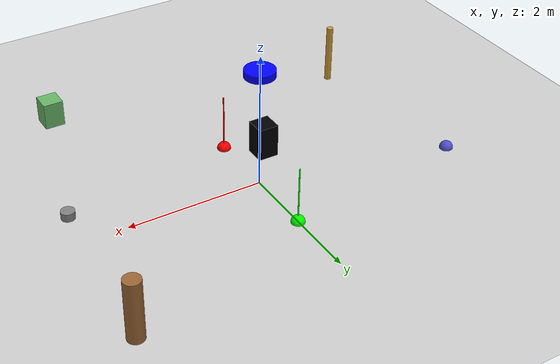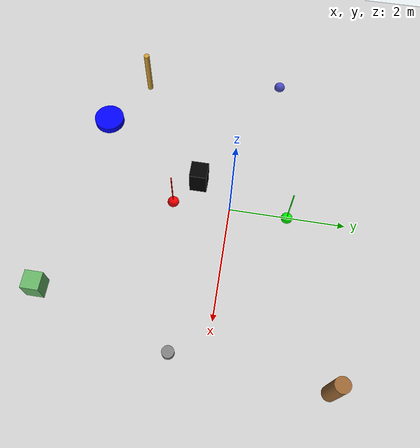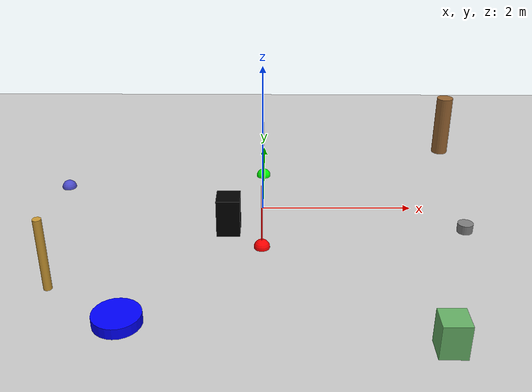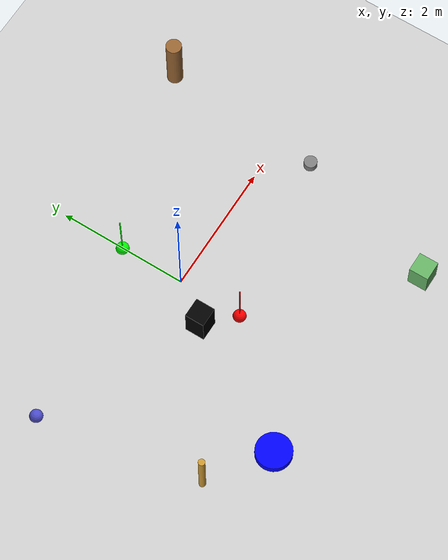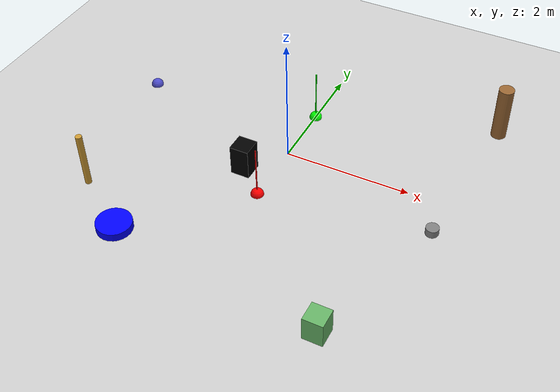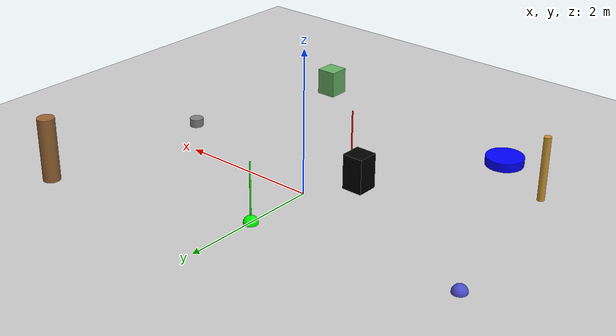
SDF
<?xml version="1.0"?>
<sdf version="1.6">
  <world name="figure8_world">
    <include>
      <uri>model://ground_plane</uri>
    </include>
    <include>
      <uri>model://sun</uri>
    </include>

    <!-- ==================== 真桩（与实车形状一致） ====================
         下半部：半径 10cm 半球（高 10cm），球心在地面 z=0
         上半部：半径 1cm 细杆，z 0.10~0.85 -->

    <!-- 下桩（绕逆时针） -->
    <model name="pile_down">
      <static>true</static>
      <pose>0 -1.0 0 0 0 0</pose>
      <!-- 下半球 -->
      <link name="base_link">
        <visual name="base_visual">
          <geometry>
            <sphere>
              <radius>0.10</radius>
            </sphere>
          </geometry>
          <material>
            <ambient>1 0 0 1</ambient>
            <diffuse>1 0 0 1</diffuse>
          </material>
        </visual>
        <collision name="base_collision">
          <geometry>
            <sphere>
              <radius>0.10</radius>
            </sphere>
          </geometry>
        </collision>
      </link>
      <!-- 上细杆 -->
      <link name="rod_link">
        <pose>0 0 0.475 0 0 0</pose>
        <visual name="rod_visual">
          <geometry>
            <cylinder>
              <radius>0.01</radius>
              <length>0.75</length>
            </cylinder>
          </geometry>
          <material>
            <ambient>1 0 0 1</ambient>
            <diffuse>1 0 0 1</diffuse>
          </material>
        </visual>
        <collision name="rod_collision">
          <geometry>
            <cylinder>
              <radius>0.01</radius>
              <length>0.75</length>
            </cylinder>
          </geometry>
        </collision>
      </link>
      <joint name="fix_rod" type="fixed">
        <parent>base_link</parent>
        <child>rod_link</child>
      </joint>
    </model>

    <!-- 上桩（绕顺时针） -->
    <model name="pile_up">
      <static>true</static>
      <pose>0 1.0 0 0 0 0</pose>
      <link name="base_link">
        <visual name="base_visual">
          <geometry>
            <sphere>
              <radius>0.10</radius>
            </sphere>
          </geometry>
          <material>
            <ambient>0 1 0 1</ambient>
            <diffuse>0 1 0 1</diffuse>
          </material>
        </visual>
        <collision name="base_collision">
          <geometry>
            <sphere>
              <radius>0.10</radius>
            </sphere>
          </geometry>
        </collision>
      </link>
      <link name="rod_link">
        <pose>0 0 0.475 0 0 0</pose>
        <visual name="rod_visual">
          <geometry>
            <cylinder>
              <radius>0.01</radius>
              <length>0.75</length>
            </cylinder>
          </geometry>
          <material>
            <ambient>0 1 0 1</ambient>
            <diffuse>0 1 0 1</diffuse>
          </material>
        </visual>
        <collision name="rod_collision">
          <geometry>
            <cylinder>
              <radius>0.01</radius>
              <length>0.75</length>
            </cylinder>
          </geometry>
        </collision>
      </link>
      <joint name="fix_rod" type="fixed">
        <parent>base_link</parent>
        <child>rod_link</child>
      </joint>
    </model>

    <model name="clutter_low_drum">
      <static>true</static>
      <pose>2.6 -0.6 0.06 0 0 0</pose>
      <link name="link">
        <visual name="visual">
          <geometry><cylinder><radius>0.10</radius><length>0.12</length></cylinder></geometry>
          <material><ambient>0.5 0.5 0.5 1</ambient><diffuse>0.5 0.5 0.5 1</diffuse></material>
        </visual>
        <collision name="collision">
          <geometry><cylinder><radius>0.10</radius><length>0.12</length></cylinder></geometry>
        </collision>
      </link>
    </model>

    <model name="clutter_fat_pole">
      <static>true</static>
      <pose>2.8 1.9 0.45 0 0 0</pose>
      <link name="link">
        <visual name="visual">
          <geometry><cylinder><radius>0.12</radius><length>0.90</length></cylinder></geometry>
          <material><ambient>0.6 0.4 0.2 1</ambient><diffuse>0.6 0.4 0.2 1</diffuse></material>
        </visual>
        <collision name="collision">
          <geometry><cylinder><radius>0.12</radius><length>0.90</length></cylinder></geometry>
        </collision>
      </link>
    </model>

    <model name="clutter_half_sphere">
      <static>true</static>
      <pose>-2.8 0.6 0 0 0 0</pose>
      <link name="link">
        <visual name="visual">
          <geometry><sphere><radius>0.10</radius></sphere></geometry>
          <material><ambient>0.3 0.3 0.8 1</ambient><diffuse>0.3 0.3 0.8 1</diffuse></material>
        </visual>
        <collision name="collision">
          <geometry><sphere><radius>0.10</radius></sphere></geometry>
        </collision>
      </link>
    </model>

    <model name="clutter_thin_pole">
      <static>true</static>
      <pose>-2.4 -1.9 0.45 0 0 0</pose>
      <link name="link">
        <visual name="visual">
          <geometry><cylinder><radius>0.05</radius><length>0.90</length></cylinder></geometry>
          <material><ambient>0.8 0.6 0.2 1</ambient><diffuse>0.8 0.6 0.2 1</diffuse></material>
        </visual>
        <collision name="collision">
          <geometry><cylinder><radius>0.05</radius><length>0.90</length></cylinder></geometry>
        </collision>
      </link>
    </model>

    <model name="clutter_box">
      <static>true</static>
      <pose>1.9 -2.9 0.2 0 0 0</pose>
      <link name="link">
        <visual name="visual">
          <geometry><box><size>0.3 0.3 0.4</size></box></geometry>
          <material><ambient>0.4 0.7 0.4 1</ambient><diffuse>0.4 0.7 0.4 1</diffuse></material>
        </visual>
        <collision name="collision">
          <geometry><box><size>0.3 0.3 0.4</size></box></geometry>
        </collision>
      </link>
    </model>

    <!-- 临时测试障碍（"人"）：返程路线外侧 0.35m（挡路触发避障，
         但离「启动位→上桩」视线 0.35m，箱角(0.21m)也不挡杆） -->
    <model name="test_person">
      <static>true</static>
      <pose>-0.43 -0.61 0.25 0 0 0</pose>
      <link name="link">
        <visual name="visual">
          <geometry><box><size>0.3 0.3 0.5</size></box></geometry>
          <material><ambient>0 0 0 1</ambient><diffuse>0 0 0 1</diffuse></material>
        </visual>
        <collision name="collision">
          <geometry><box><size>0.3 0.3 0.5</size></box></geometry>
        </collision>
      </link>
    </model>

    <!-- ==================== 全向车 ====================
         kinematic=true：SetLinearVel 精确控制速度，不被地面摩擦拖慢。
         碰撞体压扁到 z∈[0,0.04]：5 层激光从车中心水平射出（层高 0.05 起），
         压扁的碰撞体挡不住射线，射线也就不会打到车自身。 -->

    <model name="robot">
      <kinematic>true</kinematic>
      <pose>-1.5 -2.5 0.02 0 0 0</pose>
      <link name="base_link">
        <visual name="visual">
          <geometry>
            <cylinder>
              <radius>0.27</radius>
              <length>0.2</length>
            </cylinder>
          </geometry>
          <material>
            <ambient>0 0 1 1</ambient>
            <diffuse>0 0 1 1</diffuse>
          </material>
        </visual>
        <collision name="collision">
          <geometry>
            <cylinder>
              <radius>0.27</radius>
              <length>0.04</length>
            </cylinder>
          </geometry>
        </collision>
        <inertial>
          <mass>8.2</mass>
          <inertia>
            <ixx>0.06</ixx>
            <ixy>0.0</ixy>
            <ixz>0.0</ixz>
            <iyy>0.06</iyy>
            <iyz>0.0</iyz>
            <izz>0.06</izz>
          </inertia>
        </inertial>

        <!-- 5 层水平激光，模拟实车 Livox 在 5 个高度看到的截面：
             低带 0.05/0.06（半球截面 r≈0.08）、中间 0.25、
             高带 0.45/0.80（细杆截面 r=0.01）。
             起点 z_rel = 层高 - 0.02（link 原点在世界 z=0.02）。 -->
        <sensor name="lidar_low1" type="ray">
          <pose>0 0 0.03 0 0 0</pose>
          <ray>
            <scan>
              <horizontal>
                <samples>1440</samples>
                <resolution>1</resolution>
                <min_angle>-3.14159</min_angle>
                <max_angle>3.14159</max_angle>
              </horizontal>
            </scan>
            <range>
              <min>0.1</min>
              <max>10.0</max>
              <resolution>0.01</resolution>
            </range>
          </ray>
          <plugin name="lidar_low1_plugin" filename="libgazebo_ros_ray_sensor.so">
            <ros>
              <namespace>/</namespace>
              <remapping>~/out:=/scan_low1</remapping>
            </ros>
            <output_type>sensor_msgs/LaserScan</output_type>
            <frame_name>base_link</frame_name>
          </plugin>
        </sensor>

        <sensor name="lidar_low2" type="ray">
          <pose>0 0 0.04 0 0 0</pose>
          <ray>
            <scan>
              <horizontal>
                <samples>1440</samples>
                <resolution>1</resolution>
                <min_angle>-3.14159</min_angle>
                <max_angle>3.14159</max_angle>
              </horizontal>
            </scan>
            <range>
              <min>0.1</min>
              <max>10.0</max>
              <resolution>0.01</resolution>
            </range>
          </ray>
          <plugin name="lidar_low2_plugin" filename="libgazebo_ros_ray_sensor.so">
            <ros>
              <namespace>/</namespace>
              <remapping>~/out:=/scan_low2</remapping>
            </ros>
            <output_type>sensor_msgs/LaserScan</output_type>
            <frame_name>base_link</frame_name>
          </plugin>
        </sensor>

        <sensor name="lidar_mid" type="ray">
          <pose>0 0 0.23 0 0 0</pose>
          <ray>
            <scan>
              <horizontal>
                <samples>1440</samples>
                <resolution>1</resolution>
                <min_angle>-3.14159</min_angle>
                <max_angle>3.14159</max_angle>
              </horizontal>
            </scan>
            <range>
              <min>0.1</min>
              <max>10.0</max>
              <resolution>0.01</resolution>
            </range>
          </ray>
          <plugin name="lidar_mid_plugin" filename="libgazebo_ros_ray_sensor.so">
            <ros>
              <namespace>/</namespace>
              <remapping>~/out:=/scan_mid</remapping>
            </ros>
            <output_type>sensor_msgs/LaserScan</output_type>
            <frame_name>base_link</frame_name>
          </plugin>
        </sensor>

        <sensor name="lidar_high1" type="ray">
          <pose>0 0 0.43 0 0 0</pose>
          <ray>
            <scan>
              <horizontal>
                <samples>1440</samples>
                <resolution>1</resolution>
                <min_angle>-3.14159</min_angle>
                <max_angle>3.14159</max_angle>
              </horizontal>
            </scan>
            <range>
              <min>0.1</min>
              <max>10.0</max>
              <resolution>0.01</resolution>
            </range>
          </ray>
          <plugin name="lidar_high1_plugin" filename="libgazebo_ros_ray_sensor.so">
            <ros>
              <namespace>/</namespace>
              <remapping>~/out:=/scan_high1</remapping>
            </ros>
            <output_type>sensor_msgs/LaserScan</output_type>
            <frame_name>base_link</frame_name>
          </plugin>
        </sensor>

        <sensor name="lidar_high2" type="ray">
          <pose>0 0 0.78 0 0 0</pose>
          <ray>
            <scan>
              <horizontal>
                <samples>1440</samples>
                <resolution>1</resolution>
                <min_angle>-3.14159</min_angle>
                <max_angle>3.14159</max_angle>
              </horizontal>
            </scan>
            <range>
              <min>0.1</min>
              <max>10.0</max>
              <resolution>0.01</resolution>
            </range>
          </ray>
          <plugin name="lidar_high2_plugin" filename="libgazebo_ros_ray_sensor.so">
            <ros>
              <namespace>/</namespace>
              <remapping>~/out:=/scan_high2</remapping>
            </ros>
            <output_type>sensor_msgs/LaserScan</output_type>
            <frame_name>base_link</frame_name>
          </plugin>
        </sensor>
      </link>

      <plugin name="planar_move" filename="libgazebo_ros_planar_move.so">
        <ros>
          <namespace>/</namespace>
          <remapping>cmd_vel:=cmd_vel</remapping>
          <remapping>odom:=odom</remapping>
        </ros>
        <command_topic>cmd_vel</command_topic>
        <odometry_topic>odom</odometry_topic>
        <odometry_frame>odom</odometry_frame>
        <robot_base_frame>base_link</robot_base_frame>
        <publish_odom_tf>true</publish_odom_tf>
        <update_rate>50.0</update_rate>
        <publish_rate>50.0</publish_rate>
      </plugin>
    </model>
  </world>
</sdf>
